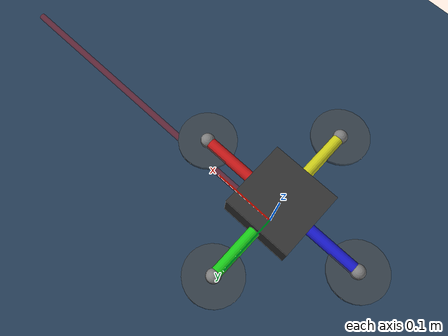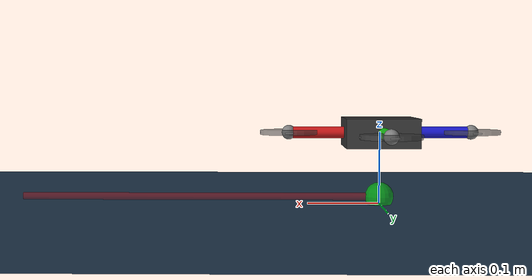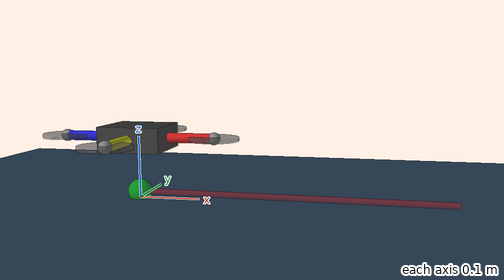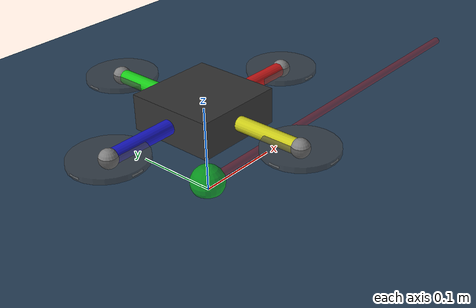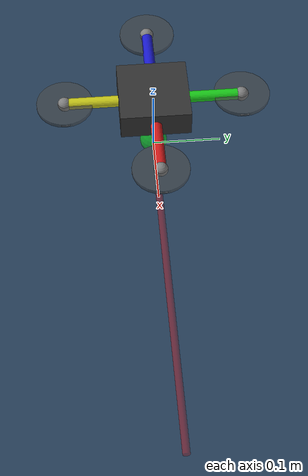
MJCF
<?xml version="1.0" ?>
<mujoco model="quadrotor_scene_real">
  <compiler angle="radian" coordinate="local" inertiafromgeom="false"/>

  <option timestep="0.001" gravity="0 0 -9.81">
    <flag warmstart="enable"/>
  </option>

  <visual>
    <global offwidth="1280" offheight="720"/>
    <quality shadowsize="4096"/>
    <map force="0.1" fogstart="3" fogend="5" zfar="30"/>
    <headlight diffuse="0.6 0.6 0.6" ambient="0.3 0.3 0.3" specular="0 0 0"/>
    <rgba haze="0.15 0.25 0.35 1"/>
  </visual>

  <asset>
    <texture name="grid" type="2d" builtin="checker" width="512" height="512" rgb1="0.2 0.2 0.2" rgb2="0.3 0.3 0.3"/>
    <material name="grid" texture="grid" texrepeat="1 1" texuniform="true" reflectance="0.2"/>
    <texture name="skybox" type="skybox" builtin="gradient" rgb1="0.3 0.5 0.7" rgb2="0.0 0.0 0.0" width="512" height="512"/>
    <texture type="2d" name="groundplane" builtin="checker" mark="edge" rgb1="0.2 0.3 0.4" rgb2="0.1 0.2 0.3"
      markrgb="0.8 0.8 0.8" width="300" height="300"/>
    <material name="groundplane" texture="groundplane" texuniform="true" texrepeat="5 5" reflectance="0.2"/>
  </asset>

  <default>
    <geom condim="3" contype="1" conaffinity="1" friction="0 0 0"/>
    <joint limited="false" damping="0"/>
    <motor ctrllimited="false"/>
  </default>

  <worldbody>

    <!-- Ground plane -->
    <light pos="0 0 1.5" dir="0 0 -1" directional="true"/>
    <geom name="floor" size="0 0 0.05" type="plane" material="groundplane"/>

    <!-- Lighting -->
    <light directional="true" diffuse="0.8 0.8 0.8" specular="0.2 0.2 0.2" pos="0 0 5" dir="0 0 -1"/>
    <light directional="true" diffuse="0.4 0.4 0.4" specular="0.1 0.1 0.1" pos="0 0 4" dir="0.3 0.3 -1"/>

    <!-- Quadrotor body (floating body with free joint) -->
    <body name="base" pos="0 0 0.1">
      <!-- Free joint allows 6 DOF motion (3 translation + 3 rotation) -->
      <freejoint name="base_joint"/>

      <!-- Inertia matching OCS2: Thxxyy=0.00232, Thzz=0.0003, mass=0.546 -->
      <inertial mass="0.546" pos="0 0 0" diaginertia="0.00232 0.00232 0.0003"/>

      <!-- Central body -->
      <geom type="box" size="0.05 0.05 0.02" rgba="0.2 0.2 0.2 1" mass="0.3"/>

      <!-- Arms connecting to rotors -->
      <!-- Arm 1 (+X direction) - Front -->
      <geom name="arm_front" type="capsule" fromto="0 0 0 0.1265 0 0" size="0.008" rgba="0.8 0.1 0.1 1" mass="0.05"/>

      <!-- Arm 2 (+Y direction) - Right -->
      <geom name="arm_right" type="capsule" fromto="0 0 0 0 0.1265 0" size="0.008" rgba="0.1 0.8 0.1 1" mass="0.05"/>

      <!-- Arm 3 (-X direction) - Back -->
      <geom name="arm_back" type="capsule" fromto="0 0 0 -0.1265 0 0" size="0.008" rgba="0.1 0.1 0.8 1" mass="0.05"/>

      <!-- Arm 4 (-Y direction) - Left -->
      <geom name="arm_left" type="capsule" fromto="0 0 0 0 -0.1265 0" size="0.008" rgba="0.8 0.8 0.1 1" mass="0.05"/>

      <!-- Rotor visualizations at arm ends -->
      <!-- Rotor 1 (Front, +X) -->
      <body name="rotor_1" pos="0.1265 0 0">
        <geom type="cylinder" size="0.04 0.003" rgba="0.3 0.3 0.3 0.6" mass="0.02"/>
        <geom type="box" size="0.04 0.006 0.001" rgba="0.5 0.5 0.5 0.8" mass="0.01"/>
        <geom type="box" size="0.006 0.04 0.001" rgba="0.5 0.5 0.5 0.8" mass="0.01"/>
        <site name="motor1" pos="0 0 0" size="0.01"/>
      </body>

      <!-- Rotor 2 (Right, +Y) -->
      <body name="rotor_2" pos="0 0.1265 0">
        <geom type="cylinder" size="0.04 0.003" rgba="0.3 0.3 0.3 0.6" mass="0.02"/>
        <geom type="box" size="0.04 0.006 0.001" rgba="0.5 0.5 0.5 0.8" mass="0.01"/>
        <geom type="box" size="0.006 0.04 0.001" rgba="0.5 0.5 0.5 0.8" mass="0.01"/>
        <site name="motor2" pos="0 0 0" size="0.01"/>
      </body>

      <!-- Rotor 3 (Back, -X) -->
      <body name="rotor_3" pos="-0.1265 0 0">
        <geom type="cylinder" size="0.04 0.003" rgba="0.3 0.3 0.3 0.6" mass="0.02"/>
        <geom type="box" size="0.04 0.006 0.001" rgba="0.5 0.5 0.5 0.8" mass="0.01"/>
        <geom type="box" size="0.006 0.04 0.001" rgba="0.5 0.5 0.5 0.8" mass="0.01"/>
        <site name="motor3" pos="0 0 0" size="0.01"/>
      </body>

      <!-- Rotor 4 (Left, -Y) -->
      <body name="rotor_4" pos="0 -0.1265 0">
        <geom type="cylinder" size="0.04 0.003" rgba="0.3 0.3 0.3 0.6" mass="0.02"/>
        <geom type="box" size="0.04 0.006 0.001" rgba="0.5 0.5 0.5 0.8" mass="0.01"/>
        <geom type="box" size="0.006 0.04 0.001" rgba="0.5 0.5 0.5 0.8" mass="0.01"/>
        <site name="motor4" pos="0 0 0" size="0.01"/>
      </body>
      <!-- Camera body (optional visualization) -->
      <body name="camera_body" pos="-3.0 0 1.5" euler="3.14 -2.2689 1.5708">
        <camera name="d435i_optical_cam" mode="fixed" fovy="80"/>
      </body>
    </body>

    <!-- Visual reference marks -->
    <body name="reference" pos="0 0 0.01">
      <geom name="origin" type="sphere" size="0.02" rgba="0 1 0 0.5" contype="0" conaffinity="0"/>
      <geom name="x_axis" type="cylinder" fromto="0 0 0 0.5 0 0" size="0.005" rgba="1 0 0 0.3" contype="0" conaffinity="0"/>
    </body>
  </worldbody>

  <!-- Actuators: 4 individual motor thrusts -->
  <actuator>
    <!-- Motor 1: Front (+X) - Thrust in +Z direction at motor1 site -->
    <motor name="motor1" site="motor1" gear="0 0 1 0 0 0" ctrllimited="true" ctrlrange="0 10"/>

    <!-- Motor 2: Right (+Y) - Thrust in +Z direction at motor2 site -->
    <motor name="motor2" site="motor2" gear="0 0 1 0 0 0" ctrllimited="true" ctrlrange="0 10"/>

    <!-- Motor 3: Back (-X) - Thrust in +Z direction at motor3 site -->
    <motor name="motor3" site="motor3" gear="0 0 1 0 0 0" ctrllimited="true" ctrlrange="0 10"/>

    <!-- Motor 4: Left (-Y) - Thrust in +Z direction at motor4 site -->
    <motor name="motor4" site="motor4" gear="0 0 1 0 0 0" ctrllimited="true" ctrlrange="0 10"/>
  </actuator>

  <sensor>
    <!-- Position -->
    <framepos name="pos" objtype="body" objname="base"/>
    <!-- Quaternion -->
    <framequat name="quat" objtype="body" objname="base"/>
    <!-- Linear velocity -->
    <framelinvel name="linvel" objtype="body" objname="base"/>
    <!-- Angular velocity -->
    <frameangvel name="angvel" objtype="body" objname="base"/>
  </sensor>
</mujoco>
